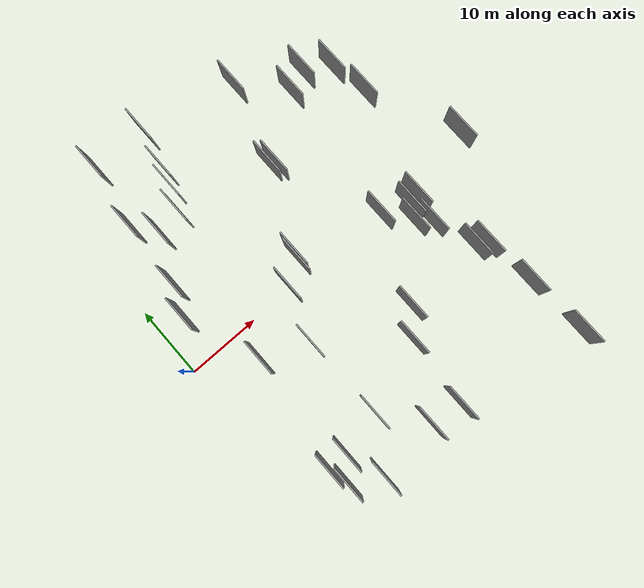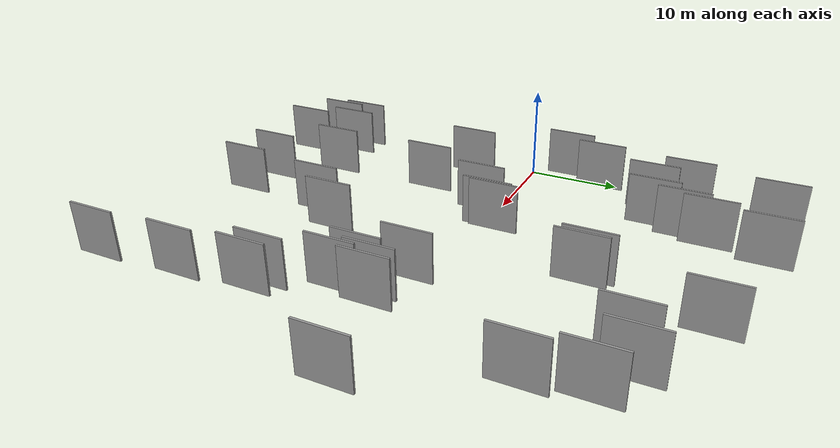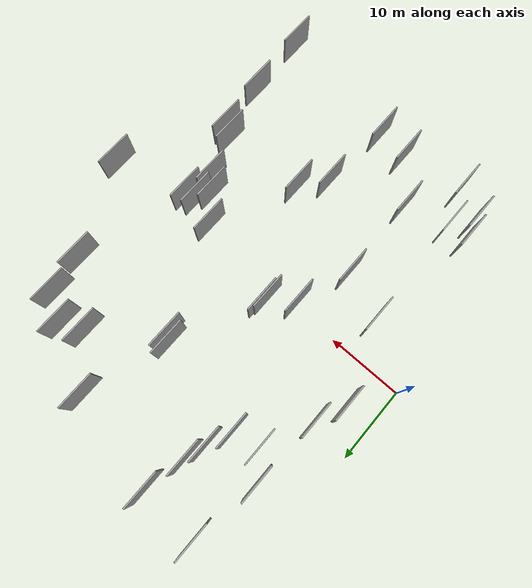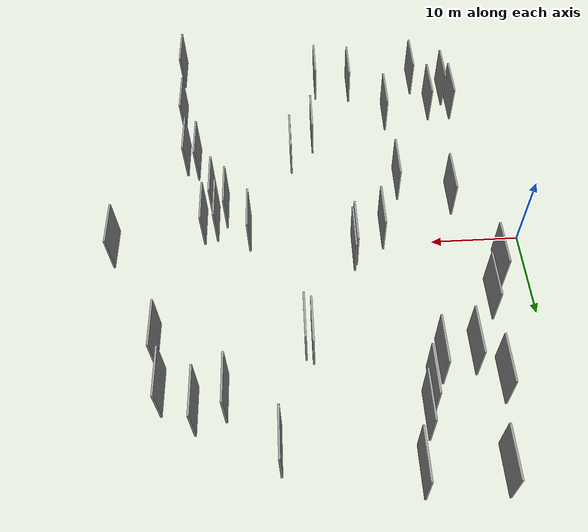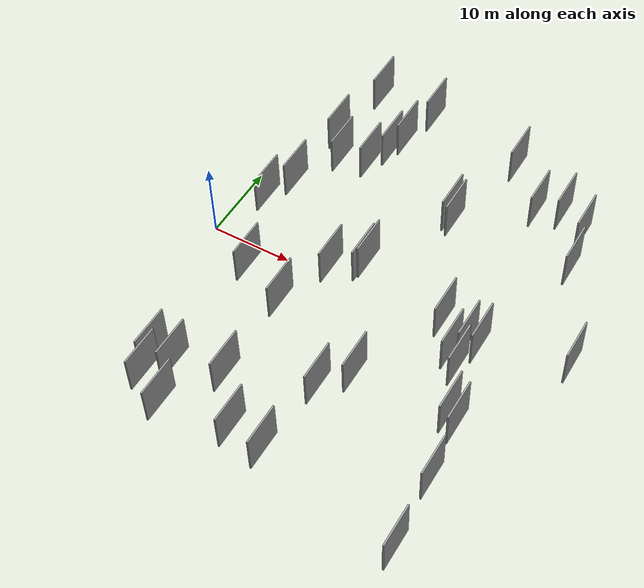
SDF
<sdf version="1.6">
 <world name="default">
  <scene>
   <sky><clouds><speed>12</speed></clouds></sky>
   <ambient>0.4 0.4 0.4 1</ambient>
   <background>0.7 0.7 0.7 1</background>
   <shadows>1</shadows>
  </scene>
  <gravity>0 0 -9.8066</gravity>
  <magnetic_field>6e-06 2.3e-05 -4.2e-05</magnetic_field>
  <physics default="0" name="default_physics" type="ode">
   <ode>
    <solver>
     <type>quick</type>
     <iters>10</iters>
     <sor>1.0</sor>
     <use_dynamic_moi_rescaling>0</use_dynamic_moi_rescaling>
    </solver>
    <constraints>
     <cfm>0</cfm>
     <erp>0.2</erp>
     <contact_max_correcting_vel>100</contact_max_correcting_vel>
     <contact_surface_layer>0.001</contact_surface_layer>
    </constraints>
   </ode>
   <max_step_size>0.004</max_step_size>
   <real_time_factor>1</real_time_factor>
   <real_time_update_rate>250</real_time_update_rate>
  </physics>
  <light name="sun" type="directional">
   <pose>0 0 10 0 0 0</pose>
   <diffuse>0.8 0.8 0.8 1</diffuse>
   <specular>0.2 0.2 0.2 1</specular>
   <attenuation>
    <range>1000</range>
    <constant>0.9</constant>
    <linear>0.01</linear>
    <quadratic>0.001</quadratic>
   </attenuation>
   <direction>-0.5 0.1 -0.9</direction>
  </light>
  <model name="grey_wall_1">
   <static>1</static>
   <pose>8.2006 -19.9528 2.5 0.000000 0.000000 1.570796</pose>
   <link name="link">
    <pose>0 0 2.50 0 0 0</pose>
    <collision name="collision"><geometry><box><size>5.00 0.2 5.00</size></box></geometry></collision>
    <visual name="visual">
     <cast_shadows>0</cast_shadows>
     <geometry><box><size>5.00 0.2 5.00</size></box></geometry>
     <material>
      <script>
       <uri>model://grey_wall/materials/scripts</uri>
       <uri>model://grey_wall/materials/textures</uri>
       <name>vrc/grey_wall</name>
      </script>
     </material>
    </visual>
   </link>
  </model>
  <model name="grey_wall_2">
   <static>1</static>
   <pose>34.5145 -2.1773 2.5 0.000000 0.000000 1.570796</pose>
   <link name="link">
    <pose>0 0 2.50 0 0 0</pose>
    <collision name="collision"><geometry><box><size>5.00 0.2 5.00</size></box></geometry></collision>
    <visual name="visual">
     <cast_shadows>0</cast_shadows>
     <geometry><box><size>5.00 0.2 5.00</size></box></geometry>
     <material>
      <script>
       <uri>model://grey_wall/materials/scripts</uri>
       <uri>model://grey_wall/materials/textures</uri>
       <name>vrc/grey_wall</name>
      </script>
     </material>
    </visual>
   </link>
  </model>
  <model name="grey_wall_3">
   <static>1</static>
   <pose>25.9468 -11.8065 2.5 0.000000 0.000000 1.570796</pose>
   <link name="link">
    <pose>0 0 2.50 0 0 0</pose>
    <collision name="collision"><geometry><box><size>5.00 0.2 5.00</size></box></geometry></collision>
    <visual name="visual">
     <cast_shadows>0</cast_shadows>
     <geometry><box><size>5.00 0.2 5.00</size></box></geometry>
     <material>
      <script>
       <uri>model://grey_wall/materials/scripts</uri>
       <uri>model://grey_wall/materials/textures</uri>
       <name>vrc/grey_wall</name>
      </script>
     </material>
    </visual>
   </link>
  </model>
  <model name="grey_wall_4">
   <static>1</static>
   <pose>39.1354 -19.1240 2.5 0.000000 0.000000 1.570796</pose>
   <link name="link">
    <pose>0 0 2.50 0 0 0</pose>
    <collision name="collision"><geometry><box><size>5.00 0.2 5.00</size></box></geometry></collision>
    <visual name="visual">
     <cast_shadows>0</cast_shadows>
     <geometry><box><size>5.00 0.2 5.00</size></box></geometry>
     <material>
      <script>
       <uri>model://grey_wall/materials/scripts</uri>
       <uri>model://grey_wall/materials/textures</uri>
       <name>vrc/grey_wall</name>
      </script>
     </material>
    </visual>
   </link>
  </model>
  <model name="grey_wall_5">
   <static>1</static>
   <pose>3.9859 5.5647 2.5 0.000000 0.000000 1.570796</pose>
   <link name="link">
    <pose>0 0 2.50 0 0 0</pose>
    <collision name="collision"><geometry><box><size>5.00 0.2 5.00</size></box></geometry></collision>
    <visual name="visual">
     <cast_shadows>0</cast_shadows>
     <geometry><box><size>5.00 0.2 5.00</size></box></geometry>
     <material>
      <script>
       <uri>model://grey_wall/materials/scripts</uri>
       <uri>model://grey_wall/materials/textures</uri>
       <name>vrc/grey_wall</name>
      </script>
     </material>
    </visual>
   </link>
  </model>
  <model name="grey_wall_6">
   <static>1</static>
   <pose>30.8836 -0.6187 2.5 0.000000 0.000000 1.570796</pose>
   <link name="link">
    <pose>0 0 2.50 0 0 0</pose>
    <collision name="collision"><geometry><box><size>5.00 0.2 5.00</size></box></geometry></collision>
    <visual name="visual">
     <cast_shadows>0</cast_shadows>
     <geometry><box><size>5.00 0.2 5.00</size></box></geometry>
     <material>
      <script>
       <uri>model://grey_wall/materials/scripts</uri>
       <uri>model://grey_wall/materials/textures</uri>
       <name>vrc/grey_wall</name>
      </script>
     </material>
    </visual>
   </link>
  </model>
  <model name="grey_wall_7">
   <static>1</static>
   <pose>45.7102 0.7342 2.5 0.000000 0.000000 1.570796</pose>
   <link name="link">
    <pose>0 0 2.50 0 0 0</pose>
    <collision name="collision"><geometry><box><size>5.00 0.2 5.00</size></box></geometry></collision>
    <visual name="visual">
     <cast_shadows>0</cast_shadows>
     <geometry><box><size>5.00 0.2 5.00</size></box></geometry>
     <material>
      <script>
       <uri>model://grey_wall/materials/scripts</uri>
       <uri>model://grey_wall/materials/textures</uri>
       <name>vrc/grey_wall</name>
      </script>
     </material>
    </visual>
   </link>
  </model>
  <model name="grey_wall_8">
   <static>1</static>
   <pose>19.4654 2.5809 2.5 0.000000 0.000000 1.570796</pose>
   <link name="link">
    <pose>0 0 2.50 0 0 0</pose>
    <collision name="collision"><geometry><box><size>5.00 0.2 5.00</size></box></geometry></collision>
    <visual name="visual">
     <cast_shadows>0</cast_shadows>
     <geometry><box><size>5.00 0.2 5.00</size></box></geometry>
     <material>
      <script>
       <uri>model://grey_wall/materials/scripts</uri>
       <uri>model://grey_wall/materials/textures</uri>
       <name>vrc/grey_wall</name>
      </script>
     </material>
    </visual>
   </link>
  </model>
  <model name="grey_wall_9">
   <static>1</static>
   <pose>6.1823 18.6429 2.5 0.000000 0.000000 1.570796</pose>
   <link name="link">
    <pose>0 0 2.50 0 0 0</pose>
    <collision name="collision"><geometry><box><size>5.00 0.2 5.00</size></box></geometry></collision>
    <visual name="visual">
     <cast_shadows>0</cast_shadows>
     <geometry><box><size>5.00 0.2 5.00</size></box></geometry>
     <material>
      <script>
       <uri>model://grey_wall/materials/scripts</uri>
       <uri>model://grey_wall/materials/textures</uri>
       <name>vrc/grey_wall</name>
      </script>
     </material>
    </visual>
   </link>
  </model>
  <model name="grey_wall_10">
   <static>1</static>
   <pose>13.9180 -18.4678 2.5 0.000000 0.000000 1.570796</pose>
   <link name="link">
    <pose>0 0 2.50 0 0 0</pose>
    <collision name="collision"><geometry><box><size>5.00 0.2 5.00</size></box></geometry></collision>
    <visual name="visual">
     <cast_shadows>0</cast_shadows>
     <geometry><box><size>5.00 0.2 5.00</size></box></geometry>
     <material>
      <script>
       <uri>model://grey_wall/materials/scripts</uri>
       <uri>model://grey_wall/materials/textures</uri>
       <name>vrc/grey_wall</name>
      </script>
     </material>
    </visual>
   </link>
  </model>
  <model name="grey_wall_11">
   <static>1</static>
   <pose>23.2709 -15.0259 2.5 0.000000 0.000000 1.570796</pose>
   <link name="link">
    <pose>0 0 2.50 0 0 0</pose>
    <collision name="collision"><geometry><box><size>5.00 0.2 5.00</size></box></geometry></collision>
    <visual name="visual">
     <cast_shadows>0</cast_shadows>
     <geometry><box><size>5.00 0.2 5.00</size></box></geometry>
     <material>
      <script>
       <uri>model://grey_wall/materials/scripts</uri>
       <uri>model://grey_wall/materials/textures</uri>
       <name>vrc/grey_wall</name>
      </script>
     </material>
    </visual>
   </link>
  </model>
  <model name="grey_wall_12">
   <static>1</static>
   <pose>16.1060 -0.1244 2.5 0.000000 0.000000 1.570796</pose>
   <link name="link">
    <pose>0 0 2.50 0 0 0</pose>
    <collision name="collision"><geometry><box><size>5.00 0.2 5.00</size></box></geometry></collision>
    <visual name="visual">
     <cast_shadows>0</cast_shadows>
     <geometry><box><size>5.00 0.2 5.00</size></box></geometry>
     <material>
      <script>
       <uri>model://grey_wall/materials/scripts</uri>
       <uri>model://grey_wall/materials/textures</uri>
       <name>vrc/grey_wall</name>
      </script>
     </material>
    </visual>
   </link>
  </model>
  <model name="grey_wall_13">
   <static>1</static>
   <pose>39.2687 18.1331 2.5 0.000000 0.000000 1.570796</pose>
   <link name="link">
    <pose>0 0 2.50 0 0 0</pose>
    <collision name="collision"><geometry><box><size>5.00 0.2 5.00</size></box></geometry></collision>
    <visual name="visual">
     <cast_shadows>0</cast_shadows>
     <geometry><box><size>5.00 0.2 5.00</size></box></geometry>
     <material>
      <script>
       <uri>model://grey_wall/materials/scripts</uri>
       <uri>model://grey_wall/materials/textures</uri>
       <name>vrc/grey_wall</name>
      </script>
     </material>
    </visual>
   </link>
  </model>
  <model name="grey_wall_14">
   <static>1</static>
   <pose>5.4547 -19.9557 2.5 0.000000 0.000000 1.570796</pose>
   <link name="link">
    <pose>0 0 2.50 0 0 0</pose>
    <collision name="collision"><geometry><box><size>5.00 0.2 5.00</size></box></geometry></collision>
    <visual name="visual">
     <cast_shadows>0</cast_shadows>
     <geometry><box><size>5.00 0.2 5.00</size></box></geometry>
     <material>
      <script>
       <uri>model://grey_wall/materials/scripts</uri>
       <uri>model://grey_wall/materials/textures</uri>
       <name>vrc/grey_wall</name>
      </script>
     </material>
    </visual>
   </link>
  </model>
  <model name="grey_wall_15">
   <static>1</static>
   <pose>14.0454 21.8144 2.5 0.000000 0.000000 1.570796</pose>
   <link name="link">
    <pose>0 0 2.50 0 0 0</pose>
    <collision name="collision"><geometry><box><size>5.00 0.2 5.00</size></box></geometry></collision>
    <visual name="visual">
     <cast_shadows>0</cast_shadows>
     <geometry><box><size>5.00 0.2 5.00</size></box></geometry>
     <material>
      <script>
       <uri>model://grey_wall/materials/scripts</uri>
       <uri>model://grey_wall/materials/textures</uri>
       <name>vrc/grey_wall</name>
      </script>
     </material>
    </visual>
   </link>
  </model>
  <model name="grey_wall_16">
   <static>1</static>
   <pose>13.6824 -7.1230 2.5 0.000000 0.000000 1.570796</pose>
   <link name="link">
    <pose>0 0 2.50 0 0 0</pose>
    <collision name="collision"><geometry><box><size>5.00 0.2 5.00</size></box></geometry></collision>
    <visual name="visual">
     <cast_shadows>0</cast_shadows>
     <geometry><box><size>5.00 0.2 5.00</size></box></geometry>
     <material>
      <script>
       <uri>model://grey_wall/materials/scripts</uri>
       <uri>model://grey_wall/materials/textures</uri>
       <name>vrc/grey_wall</name>
      </script>
     </material>
    </visual>
   </link>
  </model>
  <model name="grey_wall_17">
   <static>1</static>
   <pose>8.4701 15.5159 2.5 0.000000 0.000000 1.570796</pose>
   <link name="link">
    <pose>0 0 2.50 0 0 0</pose>
    <collision name="collision"><geometry><box><size>5.00 0.2 5.00</size></box></geometry></collision>
    <visual name="visual">
     <cast_shadows>0</cast_shadows>
     <geometry><box><size>5.00 0.2 5.00</size></box></geometry>
     <material>
      <script>
       <uri>model://grey_wall/materials/scripts</uri>
       <uri>model://grey_wall/materials/textures</uri>
       <name>vrc/grey_wall</name>
      </script>
     </material>
    </visual>
   </link>
  </model>
  <model name="grey_wall_18">
   <static>1</static>
   <pose>11.9503 16.2936 2.5 0.000000 0.000000 1.570796</pose>
   <link name="link">
    <pose>0 0 2.50 0 0 0</pose>
    <collision name="collision"><geometry><box><size>5.00 0.2 5.00</size></box></geometry></collision>
    <visual name="visual">
     <cast_shadows>0</cast_shadows>
     <geometry><box><size>5.00 0.2 5.00</size></box></geometry>
     <material>
      <script>
       <uri>model://grey_wall/materials/scripts</uri>
       <uri>model://grey_wall/materials/textures</uri>
       <name>vrc/grey_wall</name>
      </script>
     </material>
    </visual>
   </link>
  </model>
  <model name="grey_wall_19">
   <static>1</static>
   <pose>39.6693 -27.7155 2.5 0.000000 0.000000 1.570796</pose>
   <link name="link">
    <pose>0 0 2.50 0 0 0</pose>
    <collision name="collision"><geometry><box><size>5.00 0.2 5.00</size></box></geometry></collision>
    <visual name="visual">
     <cast_shadows>0</cast_shadows>
     <geometry><box><size>5.00 0.2 5.00</size></box></geometry>
     <material>
      <script>
       <uri>model://grey_wall/materials/scripts</uri>
       <uri>model://grey_wall/materials/textures</uri>
       <name>vrc/grey_wall</name>
      </script>
     </material>
    </visual>
   </link>
  </model>
  <model name="grey_wall_20">
   <static>1</static>
   <pose>38.4005 -12.1236 2.5 0.000000 0.000000 1.570796</pose>
   <link name="link">
    <pose>0 0 2.50 0 0 0</pose>
    <collision name="collision"><geometry><box><size>5.00 0.2 5.00</size></box></geometry></collision>
    <visual name="visual">
     <cast_shadows>0</cast_shadows>
     <geometry><box><size>5.00 0.2 5.00</size></box></geometry>
     <material>
      <script>
       <uri>model://grey_wall/materials/scripts</uri>
       <uri>model://grey_wall/materials/textures</uri>
       <name>vrc/grey_wall</name>
      </script>
     </material>
    </visual>
   </link>
  </model>
  <model name="grey_wall_21">
   <static>1</static>
   <pose>7.7289 -4.5549 2.5 0.000000 0.000000 1.570796</pose>
   <link name="link">
    <pose>0 0 2.50 0 0 0</pose>
    <collision name="collision"><geometry><box><size>5.00 0.2 5.00</size></box></geometry></collision>
    <visual name="visual">
     <cast_shadows>0</cast_shadows>
     <geometry><box><size>5.00 0.2 5.00</size></box></geometry>
     <material>
      <script>
       <uri>model://grey_wall/materials/scripts</uri>
       <uri>model://grey_wall/materials/textures</uri>
       <name>vrc/grey_wall</name>
      </script>
     </material>
    </visual>
   </link>
  </model>
  <model name="grey_wall_22">
   <static>1</static>
   <pose>9.8994 -24.8902 2.5 0.000000 0.000000 1.570796</pose>
   <link name="link">
    <pose>0 0 2.50 0 0 0</pose>
    <collision name="collision"><geometry><box><size>5.00 0.2 5.00</size></box></geometry></collision>
    <visual name="visual">
     <cast_shadows>0</cast_shadows>
     <geometry><box><size>5.00 0.2 5.00</size></box></geometry>
     <material>
      <script>
       <uri>model://grey_wall/materials/scripts</uri>
       <uri>model://grey_wall/materials/textures</uri>
       <name>vrc/grey_wall</name>
      </script>
     </material>
    </visual>
   </link>
  </model>
  <model name="grey_wall_23">
   <static>1</static>
   <pose>35.9133 20.2074 2.5 0.000000 0.000000 1.570796</pose>
   <link name="link">
    <pose>0 0 2.50 0 0 0</pose>
    <collision name="collision"><geometry><box><size>5.00 0.2 5.00</size></box></geometry></collision>
    <visual name="visual">
     <cast_shadows>0</cast_shadows>
     <geometry><box><size>5.00 0.2 5.00</size></box></geometry>
     <material>
      <script>
       <uri>model://grey_wall/materials/scripts</uri>
       <uri>model://grey_wall/materials/textures</uri>
       <name>vrc/grey_wall</name>
      </script>
     </material>
    </visual>
   </link>
  </model>
  <model name="grey_wall_24">
   <static>1</static>
   <pose>37.0571 -11.3581 2.5 0.000000 0.000000 1.570796</pose>
   <link name="link">
    <pose>0 0 2.50 0 0 0</pose>
    <collision name="collision"><geometry><box><size>5.00 0.2 5.00</size></box></geometry></collision>
    <visual name="visual">
     <cast_shadows>0</cast_shadows>
     <geometry><box><size>5.00 0.2 5.00</size></box></geometry>
     <material>
      <script>
       <uri>model://grey_wall/materials/scripts</uri>
       <uri>model://grey_wall/materials/textures</uri>
       <name>vrc/grey_wall</name>
      </script>
     </material>
    </visual>
   </link>
  </model>
  <model name="grey_wall_25">
   <static>1</static>
   <pose>40.1353 13.0059 2.5 0.000000 0.000000 1.570796</pose>
   <link name="link">
    <pose>0 0 2.50 0 0 0</pose>
    <collision name="collision"><geometry><box><size>5.00 0.2 5.00</size></box></geometry></collision>
    <visual name="visual">
     <cast_shadows>0</cast_shadows>
     <geometry><box><size>5.00 0.2 5.00</size></box></geometry>
     <material>
      <script>
       <uri>model://grey_wall/materials/scripts</uri>
       <uri>model://grey_wall/materials/textures</uri>
       <name>vrc/grey_wall</name>
      </script>
     </material>
    </visual>
   </link>
  </model>
  <model name="grey_wall_26">
   <static>1</static>
   <pose>5.6180 9.3715 2.5 0.000000 0.000000 1.570796</pose>
   <link name="link">
    <pose>0 0 2.50 0 0 0</pose>
    <collision name="collision"><geometry><box><size>5.00 0.2 5.00</size></box></geometry></collision>
    <visual name="visual">
     <cast_shadows>0</cast_shadows>
     <geometry><box><size>5.00 0.2 5.00</size></box></geometry>
     <material>
      <script>
       <uri>model://grey_wall/materials/scripts</uri>
       <uri>model://grey_wall/materials/textures</uri>
       <name>vrc/grey_wall</name>
      </script>
     </material>
    </visual>
   </link>
  </model>
  <model name="grey_wall_27">
   <static>1</static>
   <pose>6.1217 -22.5679 2.5 0.000000 0.000000 1.570796</pose>
   <link name="link">
    <pose>0 0 2.50 0 0 0</pose>
    <collision name="collision"><geometry><box><size>5.00 0.2 5.00</size></box></geometry></collision>
    <visual name="visual">
     <cast_shadows>0</cast_shadows>
     <geometry><box><size>5.00 0.2 5.00</size></box></geometry>
     <material>
      <script>
       <uri>model://grey_wall/materials/scripts</uri>
       <uri>model://grey_wall/materials/textures</uri>
       <name>vrc/grey_wall</name>
      </script>
     </material>
    </visual>
   </link>
  </model>
  <model name="grey_wall_28">
   <static>1</static>
   <pose>25.1986 12.9842 2.5 0.000000 0.000000 1.570796</pose>
   <link name="link">
    <pose>0 0 2.50 0 0 0</pose>
    <collision name="collision"><geometry><box><size>5.00 0.2 5.00</size></box></geometry></collision>
    <visual name="visual">
     <cast_shadows>0</cast_shadows>
     <geometry><box><size>5.00 0.2 5.00</size></box></geometry>
     <material>
      <script>
       <uri>model://grey_wall/materials/scripts</uri>
       <uri>model://grey_wall/materials/textures</uri>
       <name>vrc/grey_wall</name>
      </script>
     </material>
    </visual>
   </link>
  </model>
  <model name="grey_wall_29">
   <static>1</static>
   <pose>15.2211 27.1526 2.5 0.000000 0.000000 1.570796</pose>
   <link name="link">
    <pose>0 0 2.50 0 0 0</pose>
    <collision name="collision"><geometry><box><size>5.00 0.2 5.00</size></box></geometry></collision>
    <visual name="visual">
     <cast_shadows>0</cast_shadows>
     <geometry><box><size>5.00 0.2 5.00</size></box></geometry>
     <material>
      <script>
       <uri>model://grey_wall/materials/scripts</uri>
       <uri>model://grey_wall/materials/textures</uri>
       <name>vrc/grey_wall</name>
      </script>
     </material>
    </visual>
   </link>
  </model>
  <model name="grey_wall_30">
   <static>1</static>
   <pose>27.9162 24.4913 2.5 0.000000 0.000000 1.570796</pose>
   <link name="link">
    <pose>0 0 2.50 0 0 0</pose>
    <collision name="collision"><geometry><box><size>5.00 0.2 5.00</size></box></geometry></collision>
    <visual name="visual">
     <cast_shadows>0</cast_shadows>
     <geometry><box><size>5.00 0.2 5.00</size></box></geometry>
     <material>
      <script>
       <uri>model://grey_wall/materials/scripts</uri>
       <uri>model://grey_wall/materials/textures</uri>
       <name>vrc/grey_wall</name>
      </script>
     </material>
    </visual>
   </link>
  </model>
  <model name="grey_wall_31">
   <static>1</static>
   <pose>13.2609 19.3140 2.5 0.000000 0.000000 1.570796</pose>
   <link name="link">
    <pose>0 0 2.50 0 0 0</pose>
    <collision name="collision"><geometry><box><size>5.00 0.2 5.00</size></box></geometry></collision>
    <visual name="visual">
     <cast_shadows>0</cast_shadows>
     <geometry><box><size>5.00 0.2 5.00</size></box></geometry>
     <material>
      <script>
       <uri>model://grey_wall/materials/scripts</uri>
       <uri>model://grey_wall/materials/textures</uri>
       <name>vrc/grey_wall</name>
      </script>
     </material>
    </visual>
   </link>
  </model>
  <model name="grey_wall_32">
   <static>1</static>
   <pose>22.4281 -24.5049 2.5 0.000000 0.000000 1.570796</pose>
   <link name="link">
    <pose>0 0 2.50 0 0 0</pose>
    <collision name="collision"><geometry><box><size>5.00 0.2 5.00</size></box></geometry></collision>
    <visual name="visual">
     <cast_shadows>0</cast_shadows>
     <geometry><box><size>5.00 0.2 5.00</size></box></geometry>
     <material>
      <script>
       <uri>model://grey_wall/materials/scripts</uri>
       <uri>model://grey_wall/materials/textures</uri>
       <name>vrc/grey_wall</name>
      </script>
     </material>
    </visual>
   </link>
  </model>
  <model name="grey_wall_33">
   <static>1</static>
   <pose>7.6150 27.4148 2.5 0.000000 0.000000 1.570796</pose>
   <link name="link">
    <pose>0 0 2.50 0 0 0</pose>
    <collision name="collision"><geometry><box><size>5.00 0.2 5.00</size></box></geometry></collision>
    <visual name="visual">
     <cast_shadows>0</cast_shadows>
     <geometry><box><size>5.00 0.2 5.00</size></box></geometry>
     <material>
      <script>
       <uri>model://grey_wall/materials/scripts</uri>
       <uri>model://grey_wall/materials/textures</uri>
       <name>vrc/grey_wall</name>
      </script>
     </material>
    </visual>
   </link>
  </model>
  <model name="grey_wall_34">
   <static>1</static>
   <pose>24.4704 13.4908 2.5 0.000000 0.000000 1.570796</pose>
   <link name="link">
    <pose>0 0 2.50 0 0 0</pose>
    <collision name="collision"><geometry><box><size>5.00 0.2 5.00</size></box></geometry></collision>
    <visual name="visual">
     <cast_shadows>0</cast_shadows>
     <geometry><box><size>5.00 0.2 5.00</size></box></geometry>
     <material>
      <script>
       <uri>model://grey_wall/materials/scripts</uri>
       <uri>model://grey_wall/materials/textures</uri>
       <name>vrc/grey_wall</name>
      </script>
     </material>
    </visual>
   </link>
  </model>
  <model name="grey_wall_35">
   <static>1</static>
   <pose>18.1667 -23.9061 2.5 0.000000 0.000000 1.570796</pose>
   <link name="link">
    <pose>0 0 2.50 0 0 0</pose>
    <collision name="collision"><geometry><box><size>5.00 0.2 5.00</size></box></geometry></collision>
    <visual name="visual">
     <cast_shadows>0</cast_shadows>
     <geometry><box><size>5.00 0.2 5.00</size></box></geometry>
     <material>
      <script>
       <uri>model://grey_wall/materials/scripts</uri>
       <uri>model://grey_wall/materials/textures</uri>
       <name>vrc/grey_wall</name>
      </script>
     </material>
    </visual>
   </link>
  </model>
  <model name="grey_wall_36">
   <static>1</static>
   <pose>33.4924 -4.0670 2.5 0.000000 0.000000 1.570796</pose>
   <link name="link">
    <pose>0 0 2.50 0 0 0</pose>
    <collision name="collision"><geometry><box><size>5.00 0.2 5.00</size></box></geometry></collision>
    <visual name="visual">
     <cast_shadows>0</cast_shadows>
     <geometry><box><size>5.00 0.2 5.00</size></box></geometry>
     <material>
      <script>
       <uri>model://grey_wall/materials/scripts</uri>
       <uri>model://grey_wall/materials/textures</uri>
       <name>vrc/grey_wall</name>
      </script>
     </material>
    </visual>
   </link>
  </model>
  <model name="grey_wall_37">
   <static>1</static>
   <pose>33.0207 19.0592 2.5 0.000000 0.000000 1.570796</pose>
   <link name="link">
    <pose>0 0 2.50 0 0 0</pose>
    <collision name="collision"><geometry><box><size>5.00 0.2 5.00</size></box></geometry></collision>
    <visual name="visual">
     <cast_shadows>0</cast_shadows>
     <geometry><box><size>5.00 0.2 5.00</size></box></geometry>
     <material>
      <script>
       <uri>model://grey_wall/materials/scripts</uri>
       <uri>model://grey_wall/materials/textures</uri>
       <name>vrc/grey_wall</name>
      </script>
     </material>
    </visual>
   </link>
  </model>
  <model name="grey_wall_38">
   <static>1</static>
   <pose>19.2126 1.8384 2.5 0.000000 0.000000 1.570796</pose>
   <link name="link">
    <pose>0 0 2.50 0 0 0</pose>
    <collision name="collision"><geometry><box><size>5.00 0.2 5.00</size></box></geometry></collision>
    <visual name="visual">
     <cast_shadows>0</cast_shadows>
     <geometry><box><size>5.00 0.2 5.00</size></box></geometry>
     <material>
      <script>
       <uri>model://grey_wall/materials/scripts</uri>
       <uri>model://grey_wall/materials/textures</uri>
       <name>vrc/grey_wall</name>
      </script>
     </material>
    </visual>
   </link>
  </model>
  <model name="grey_wall_39">
   <static>1</static>
   <pose>35.1174 -5.6189 2.5 0.000000 0.000000 1.570796</pose>
   <link name="link">
    <pose>0 0 2.50 0 0 0</pose>
    <collision name="collision"><geometry><box><size>5.00 0.2 5.00</size></box></geometry></collision>
    <visual name="visual">
     <cast_shadows>0</cast_shadows>
     <geometry><box><size>5.00 0.2 5.00</size></box></geometry>
     <material>
      <script>
       <uri>model://grey_wall/materials/scripts</uri>
       <uri>model://grey_wall/materials/textures</uri>
       <name>vrc/grey_wall</name>
      </script>
     </material>
    </visual>
   </link>
  </model>
  <model name="grey_wall_40">
   <static>1</static>
   <pose>35.9265 -1.8322 2.5 0.000000 0.000000 1.570796</pose>
   <link name="link">
    <pose>0 0 2.50 0 0 0</pose>
    <collision name="collision"><geometry><box><size>5.00 0.2 5.00</size></box></geometry></collision>
    <visual name="visual">
     <cast_shadows>0</cast_shadows>
     <geometry><box><size>5.00 0.2 5.00</size></box></geometry>
     <material>
      <script>
       <uri>model://grey_wall/materials/scripts</uri>
       <uri>model://grey_wall/materials/textures</uri>
       <name>vrc/grey_wall</name>
      </script>
     </material>
    </visual>
   </link>
  </model>
 </world>
</sdf>
